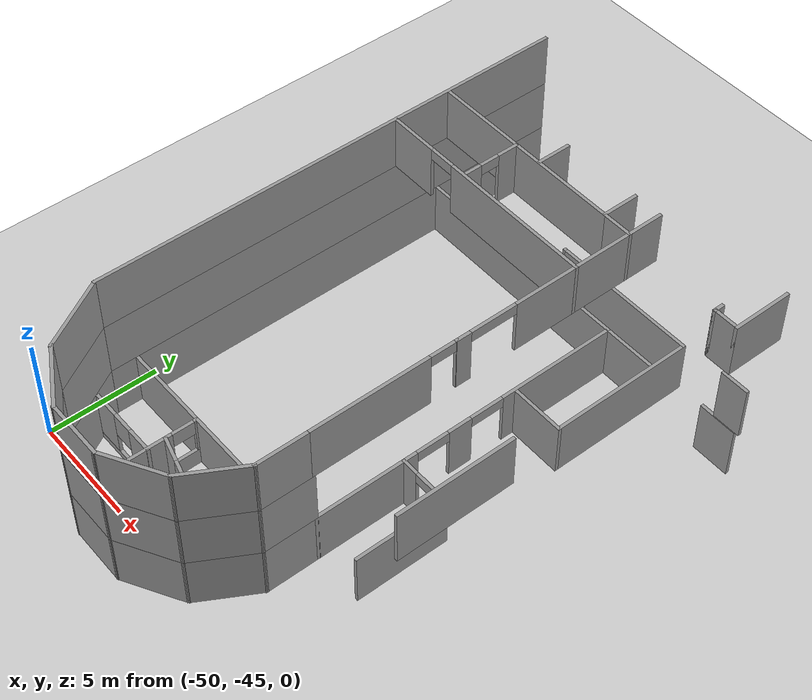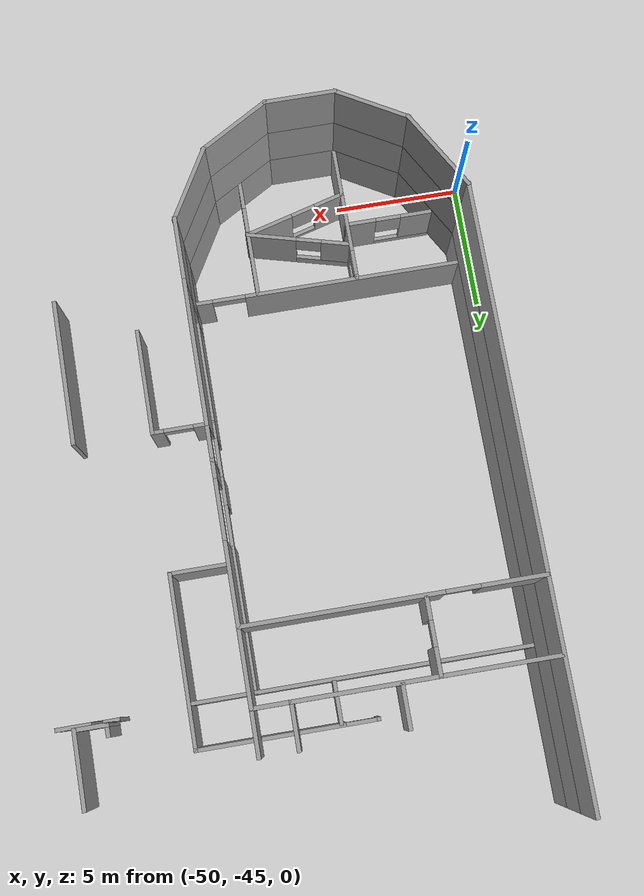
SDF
<sdf version="1.7">
 <world name="default">
  <model name="ground_plane">
   <static>1</static>
   <link name="link">
    <collision name="collision">
     <geometry><plane><normal>0 0 1</normal><size>100 100</size></plane></geometry>
     <surface><friction><ode><mu>100</mu><mu2>50</mu2></ode></friction></surface>
    </collision>
    <visual name="visual">
     <cast_shadows>0</cast_shadows>
     <geometry><plane><normal>0 0 1</normal><size>100 100</size></plane></geometry>
     <material>
      <script><uri>file://media/materials/scripts/gazebo.material</uri><name>Gazebo/Grey</name></script>
     </material>
    </visual>
   </link>
  </model>
  <model name="Anselm_Turmeda">
   <pose>-32.7988 -2.37459 0 0 -0 0</pose>
   <link name="Wall_14">
    <collision name="Wall_14_Collision">
     <geometry><box><size>22.5 0.15 2.5</size></box></geometry>
     <pose>0 0 1.25 0 -0 0</pose>
    </collision>
    <visual name="Wall_14_Visual">
     <pose>0 0 1.25 0 -0 0</pose>
     <geometry><box><size>22.5 0.15 2.5</size></box></geometry>
     <material>
      <script><uri>file://media/materials/scripts/gazebo.material</uri><name>Gazebo/Grey</name></script>
      <ambient>1 1 1 1</ambient>
     </material>
     <meta><layer>0</layer></meta>
    </visual>
    <pose>-16.4138 -28.8128 0 0 -0 -1.5708</pose>
   </link>
   <link name="Wall_145">
    <collision name="Wall_145_Collision">
     <geometry><box><size>1.75 0.15 2.5</size></box></geometry>
     <pose>0 0 1.25 0 -0 0</pose>
    </collision>
    <visual name="Wall_145_Visual">
     <pose>0 0 1.25 0 -0 0</pose>
     <geometry><box><size>1.75 0.15 2.5</size></box></geometry>
     <material>
      <script><uri>file://media/materials/scripts/gazebo.material</uri><name>Gazebo/Grey</name></script>
      <ambient>1 1 1 1</ambient>
     </material>
     <meta><layer>0</layer></meta>
    </visual>
    <pose>0.179073 -23.4174 0 0 -0 0</pose>
   </link>
   <link name="Wall_152">
    <collision name="Wall_152_Collision">
     <geometry><box><size>0.5 0.15 2.5</size></box></geometry>
     <pose>0 0 1.25 0 -0 0</pose>
    </collision>
    <visual name="Wall_152_Visual">
     <pose>0 0 1.25 0 -0 0</pose>
     <geometry><box><size>0.5 0.15 2.5</size></box></geometry>
     <material>
      <script><uri>file://media/materials/scripts/gazebo.material</uri><name>Gazebo/Grey</name></script>
      <ambient>1 1 1 1</ambient>
     </material>
     <meta><layer>2</layer></meta>
    </visual>
    <pose>-0.974545 -23.0854 5 0 -0 -1.5708</pose>
   </link>
   <link name="Wall_153">
    <collision name="Wall_153_Collision">
     <geometry><box><size>1.25 0.15 2.5</size></box></geometry>
     <pose>0 0 1.25 0 -0 0</pose>
    </collision>
    <visual name="Wall_153_Visual">
     <pose>0 0 1.25 0 -0 0</pose>
     <geometry><box><size>1.25 0.15 2.5</size></box></geometry>
     <material>
      <script><uri>file://media/materials/scripts/gazebo.material</uri><name>Gazebo/Grey</name></script>
      <ambient>1 1 1 1</ambient>
     </material>
     <meta><layer>2</layer></meta>
    </visual>
    <pose>-0.424545 -23.2604 5 0 -0 0</pose>
   </link>
   <link name="Wall_154">
    <collision name="Wall_154_Collision">
     <geometry><box><size>2.75 0.15 2.5</size></box></geometry>
     <pose>0 0 1.25 0 -0 0</pose>
    </collision>
    <visual name="Wall_154_Visual">
     <pose>0 0 1.25 0 -0 0</pose>
     <geometry><box><size>2.75 0.15 2.5</size></box></geometry>
     <material>
      <script><uri>file://media/materials/scripts/gazebo.material</uri><name>Gazebo/Grey</name></script>
      <ambient>1 1 1 1</ambient>
     </material>
     <meta><layer>2</layer></meta>
    </visual>
    <pose>0.125454 -21.9604 5 0 -0 1.5708</pose>
   </link>
   <link name="Wall_16">
    <collision name="Wall_16_Collision">
     <geometry><box><size>3.5 0.15 2.5</size></box></geometry>
     <pose>0 0 1.25 0 -0 0</pose>
    </collision>
    <visual name="Wall_16_Visual">
     <pose>0 0 1.25 0 -0 0</pose>
     <geometry><box><size>3.5 0.15 2.5</size></box></geometry>
     <material>
      <script><uri>file://media/materials/scripts/gazebo.material</uri><name>Gazebo/Grey</name></script>
      <ambient>1 1 1 1</ambient>
     </material>
     <meta><layer>0</layer></meta>
    </visual>
    <pose>-15.5763 -41.4384 0 0 -0 -1.0472</pose>
   </link>
   <link name="Wall_17">
    <collision name="Wall_17_Collision">
     <geometry><box><size>2.9879 0.15 2.5</size></box></geometry>
     <pose>0 0 1.25 0 -0 0</pose>
    </collision>
    <visual name="Wall_17_Visual">
     <pose>0 0 1.25 0 -0 0</pose>
     <geometry><box><size>2.9879 0.15 2.5</size></box></geometry>
     <material>
      <script><uri>file://media/materials/scripts/gazebo.material</uri><name>Gazebo/Grey</name></script>
      <ambient>1 1 1 1</ambient>
     </material>
     <meta><layer>0</layer></meta>
    </visual>
    <pose>-13.5117 -43.6015 0 0 -0 -0.526062</pose>
   </link>
   <link name="Wall_170">
    <collision name="Wall_170_Collision">
     <geometry><box><size>1.3 0.15 2.5</size></box></geometry>
     <pose>0 0 1.25 0 -0 0</pose>
    </collision>
    <visual name="Wall_170_Visual">
     <pose>0 0 1.25 0 -0 0</pose>
     <geometry><box><size>1.3 0.15 2.5</size></box></geometry>
     <material>
      <script><uri>file://media/materials/scripts/gazebo.material</uri><name>Gazebo/Grey</name></script>
      <ambient>1 1 1 1</ambient>
     </material>
     <meta><layer>1</layer></meta>
    </visual>
    <pose>0.597309 -23.3883 2.5 0 -0 0</pose>
   </link>
   <link name="Wall_18">
    <collision name="Wall_18_Collision">
     <geometry><box><size>2.76398 0.15 2.5</size></box></geometry>
     <pose>0 0 1.25 0 -0 0</pose>
    </collision>
    <visual name="Wall_18_Visual">
     <pose>0 0 1.25 0 -0 0</pose>
     <geometry><box><size>2.76398 0.15 2.5</size></box></geometry>
     <material>
      <script><uri>file://media/materials/scripts/gazebo.material</uri><name>Gazebo/Grey</name></script>
      <ambient>1 1 1 1</ambient>
     </material>
     <meta><layer>0</layer></meta>
    </visual>
    <pose>-10.9776 -44.314 0 0 -0 0</pose>
   </link>
   <link name="Wall_19">
    <collision name="Wall_19_Collision">
     <geometry><box><size>3 0.15 2.5</size></box></geometry>
     <pose>0 0 1.25 0 -0 0</pose>
    </collision>
    <visual name="Wall_19_Visual">
     <pose>0 0 1.25 0 -0 0</pose>
     <geometry><box><size>3 0.15 2.5</size></box></geometry>
     <material>
      <script><uri>file://media/materials/scripts/gazebo.material</uri><name>Gazebo/Grey</name></script>
      <ambient>1 1 1 1</ambient>
     </material>
     <meta><layer>0</layer></meta>
    </visual>
    <pose>-8.4365 -43.6015 0 0 -0 0.523599</pose>
   </link>
   <link name="Wall_20">
    <collision name="Wall_20_Collision">
     <geometry><box><size>3 0.15 2.5</size></box></geometry>
     <pose>0 0 1.25 0 -0 0</pose>
    </collision>
    <visual name="Wall_20_Visual">
     <pose>0 0 1.25 0 -0 0</pose>
     <geometry><box><size>3 0.15 2.5</size></box></geometry>
     <material>
      <script><uri>file://media/materials/scripts/gazebo.material</uri><name>Gazebo/Grey</name></script>
      <ambient>1 1 1 1</ambient>
     </material>
     <meta><layer>0</layer></meta>
    </visual>
    <pose>-6.48992 -41.6549 0 0 -0 1.0472</pose>
   </link>
   <link name="Wall_21">
    <collision name="Wall_21_Collision">
     <geometry><box><size>2.5 0.15 2.5</size></box></geometry>
     <pose>0 0 1.25 0 -0 0</pose>
    </collision>
    <visual name="Wall_21_Visual">
     <pose>0 0 1.25 0 -0 0</pose>
     <geometry><box><size>2.5 0.15 2.5</size></box></geometry>
     <material>
      <script><uri>file://media/materials/scripts/gazebo.material</uri><name>Gazebo/Grey</name></script>
      <ambient>1 1 1 1</ambient>
     </material>
     <meta><layer>0</layer></meta>
    </visual>
    <pose>-5.77742 -39.2458 0 0 -0 1.5708</pose>
   </link>
   <link name="Wall_269">
    <pose>-5.77742 -34.7708 5 0 -0 1.5708</pose>
    <visual name="Wall_269_Visual_0">
     <pose>-0.668463 0 1.25 0 -0 0</pose>
     <geometry><box><size>5.41307 0.15 2.5</size></box></geometry>
     <material>
      <script><uri>file://media/materials/scripts/gazebo.material</uri><name>Gazebo/Grey</name></script>
      <ambient>1 1 1 1</ambient>
     </material>
     <meta><layer>2</layer></meta>
    </visual>
    <collision name="Wall_269_Collision_0">
     <geometry><box><size>5.41307 0.15 2.5</size></box></geometry>
     <pose>-0.668463 0 1.25 0 -0 0</pose>
    </collision>
    <visual name="Wall_269_Visual_1">
     <pose>3.28669 0 1.25 0 -0 0</pose>
     <geometry><box><size>0.176623 0.15 2.5</size></box></geometry>
     <material>
      <script><uri>file://media/materials/scripts/gazebo.material</uri><name>Gazebo/Grey</name></script>
      <ambient>1 1 1 1</ambient>
     </material>
     <meta><layer>2</layer></meta>
    </visual>
    <collision name="Wall_269_Collision_1">
     <geometry><box><size>0.176623 0.15 2.5</size></box></geometry>
     <pose>3.28669 0 1.25 0 -0 0</pose>
    </collision>
    <visual name="Wall_269_Visual_2">
     <pose>2.61822 0 2.25 0 -0 0</pose>
     <geometry><box><size>1.1603 0.15 0.5</size></box></geometry>
     <material>
      <script><uri>file://media/materials/scripts/gazebo.material</uri><name>Gazebo/Grey</name></script>
      <ambient>1 1 1 1</ambient>
     </material>
     <meta><layer>2</layer></meta>
    </visual>
    <collision name="Wall_269_Collision_2">
     <geometry><box><size>1.1603 0.15 0.5</size></box></geometry>
     <pose>2.61822 0 2.25 0 -0 0</pose>
    </collision>
   </link>
   <link name="Wall_274">
    <collision name="Wall_274_Collision">
     <geometry><box><size>5.25 0.15 2.5</size></box></geometry>
     <pose>0 0 1.25 0 -0 0</pose>
    </collision>
    <visual name="Wall_274_Visual">
     <pose>0 0 1.25 0 -0 0</pose>
     <geometry><box><size>5.25 0.15 2.5</size></box></geometry>
     <material>
      <script><uri>file://media/materials/scripts/gazebo.material</uri><name>Gazebo/Grey</name></script>
      <ambient>1 1 1 1</ambient>
     </material>
     <meta><layer>2</layer></meta>
    </visual>
    <pose>-1.12488 -35.4467 5 0 -0 -1.5708</pose>
   </link>
   <link name="Wall_279">
    <pose>-5.77742 -26.4208 5 0 -0 1.5708</pose>
    <visual name="Wall_279_Visual_0">
     <pose>-4.77557 0 1.25 0 -0 0</pose>
     <geometry><box><size>0.698867 0.15 2.5</size></box></geometry>
     <material>
      <script><uri>file://media/materials/scripts/gazebo.material</uri><name>Gazebo/Grey</name></script>
      <ambient>1 1 1 1</ambient>
     </material>
     <meta><layer>2</layer></meta>
    </visual>
    <collision name="Wall_279_Collision_0">
     <geometry><box><size>0.698867 0.15 2.5</size></box></geometry>
     <pose>-4.77557 0 1.25 0 -0 0</pose>
    </collision>
    <visual name="Wall_279_Visual_1">
     <pose>1.43519 0 1.25 0 -0 0</pose>
     <geometry><box><size>7.37962 0.15 2.5</size></box></geometry>
     <material>
      <script><uri>file://media/materials/scripts/gazebo.material</uri><name>Gazebo/Grey</name></script>
      <ambient>1 1 1 1</ambient>
     </material>
     <meta><layer>2</layer></meta>
    </visual>
    <collision name="Wall_279_Collision_1">
     <geometry><box><size>7.37962 0.15 2.5</size></box></geometry>
     <pose>1.43519 0 1.25 0 -0 0</pose>
    </collision>
    <visual name="Wall_279_Visual_2">
     <pose>-3.34038 0 2.25 0 -0 0</pose>
     <geometry><box><size>2.17151 0.15 0.5</size></box></geometry>
     <material>
      <script><uri>file://media/materials/scripts/gazebo.material</uri><name>Gazebo/Grey</name></script>
      <ambient>1 1 1 1</ambient>
     </material>
     <meta><layer>2</layer></meta>
    </visual>
    <collision name="Wall_279_Collision_2">
     <geometry><box><size>2.17151 0.15 0.5</size></box></geometry>
     <pose>-3.34038 0 2.25 0 -0 0</pose>
    </collision>
   </link>
   <link name="Wall_281">
    <collision name="Wall_281_Collision">
     <geometry><box><size>1.75 0.15 2.5</size></box></geometry>
     <pose>0 0 1.25 0 -0 0</pose>
    </collision>
    <visual name="Wall_281_Visual">
     <pose>0 0 1.25 0 -0 0</pose>
     <geometry><box><size>1.75 0.15 2.5</size></box></geometry>
     <material>
      <script><uri>file://media/materials/scripts/gazebo.material</uri><name>Gazebo/Grey</name></script>
      <ambient>1 1 1 1</ambient>
     </material>
     <meta><layer>2</layer></meta>
    </visual>
    <pose>-7.12742 -22.1708 5 0 -0 -1.5708</pose>
   </link>
   <link name="Wall_282">
    <collision name="Wall_282_Collision">
     <geometry><box><size>9.35 0.15 2.5</size></box></geometry>
     <pose>0 0 1.25 0 -0 0</pose>
    </collision>
    <visual name="Wall_282_Visual">
     <pose>0 0 1.25 0 -0 0</pose>
     <geometry><box><size>9.35 0.15 2.5</size></box></geometry>
     <material>
      <script><uri>file://media/materials/scripts/gazebo.material</uri><name>Gazebo/Grey</name></script>
      <ambient>1 1 1 1</ambient>
     </material>
     <meta><layer>2</layer></meta>
    </visual>
    <pose>-11.7274 -22.9708 5 0 -0 3.14159</pose>
   </link>
   <link name="Wall_284">
    <collision name="Wall_284_Collision">
     <geometry><box><size>1.5 0.15 2.5</size></box></geometry>
     <pose>0 0 1.25 0 -0 0</pose>
    </collision>
    <visual name="Wall_284_Visual">
     <pose>0 0 1.25 0 -0 0</pose>
     <geometry><box><size>1.5 0.15 2.5</size></box></geometry>
     <material>
      <script><uri>file://media/materials/scripts/gazebo.material</uri><name>Gazebo/Grey</name></script>
      <ambient>1 1 1 1</ambient>
     </material>
     <meta><layer>2</layer></meta>
    </visual>
    <pose>-6.45242 -22.9708 5 0 -0 0</pose>
   </link>
   <link name="Wall_286">
    <pose>-11.0749 -25.7096 5 0 -0 0</pose>
    <visual name="Wall_286_Visual_0">
     <pose>-4.19923 0 1.25 0 -0 0</pose>
     <geometry><box><size>2.35155 0.15 2.5</size></box></geometry>
     <material>
      <script><uri>file://media/materials/scripts/gazebo.material</uri><name>Gazebo/Grey</name></script>
      <ambient>1 1 1 1</ambient>
     </material>
     <meta><layer>2</layer></meta>
    </visual>
    <collision name="Wall_286_Collision_0">
     <geometry><box><size>2.35155 0.15 2.5</size></box></geometry>
     <pose>-4.19923 0 1.25 0 -0 0</pose>
    </collision>
    <visual name="Wall_286_Visual_1">
     <pose>1.78614 0 1.25 0 -0 0</pose>
     <geometry><box><size>7.17772 0.15 2.5</size></box></geometry>
     <material>
      <script><uri>file://media/materials/scripts/gazebo.material</uri><name>Gazebo/Grey</name></script>
      <ambient>1 1 1 1</ambient>
     </material>
     <meta><layer>2</layer></meta>
    </visual>
    <collision name="Wall_286_Collision_1">
     <geometry><box><size>7.17772 0.15 2.5</size></box></geometry>
     <pose>1.78614 0 1.25 0 -0 0</pose>
    </collision>
    <visual name="Wall_286_Visual_2">
     <pose>-2.41309 0 2.25 0 -0 0</pose>
     <geometry><box><size>1.22073 0.15 0.5</size></box></geometry>
     <material>
      <script><uri>file://media/materials/scripts/gazebo.material</uri><name>Gazebo/Grey</name></script>
      <ambient>1 1 1 1</ambient>
     </material>
     <meta><layer>2</layer></meta>
    </visual>
    <collision name="Wall_286_Collision_2">
     <geometry><box><size>1.22073 0.15 0.5</size></box></geometry>
     <pose>-2.41309 0 2.25 0 -0 0</pose>
    </collision>
   </link>
   <link name="Wall_315">
    <collision name="Wall_315_Collision">
     <geometry><box><size>1.6 0.15 2.5</size></box></geometry>
     <pose>0 0 1.25 0 -0 0</pose>
    </collision>
    <visual name="Wall_315_Visual">
     <pose>0 0 1.25 0 -0 0</pose>
     <geometry><box><size>1.6 0.15 2.5</size></box></geometry>
     <material>
      <script><uri>file://media/materials/scripts/gazebo.material</uri><name>Gazebo/Grey</name></script>
      <ambient>1 1 1 1</ambient>
     </material>
     <meta><layer>2</layer></meta>
    </visual>
    <pose>-10.8862 -22.1772 5 0 -0 -1.5708</pose>
   </link>
   <link name="Wall_388">
    <pose>-12.2051 -24.3084 5 0 -0 -1.5708</pose>
    <visual name="Wall_388_Visual_0">
     <pose>-0.867583 0 1.25 0 -0 0</pose>
     <geometry><box><size>1.01483 0.15 2.5</size></box></geometry>
     <material>
      <script><uri>file://media/materials/scripts/gazebo.material</uri><name>Gazebo/Grey</name></script>
      <ambient>1 1 1 1</ambient>
     </material>
     <meta><layer>2</layer></meta>
    </visual>
    <collision name="Wall_388_Collision_0">
     <geometry><box><size>1.01483 0.15 2.5</size></box></geometry>
     <pose>-0.867583 0 1.25 0 -0 0</pose>
    </collision>
    <visual name="Wall_388_Visual_1">
     <pose>0.957417 0 1.25 0 -0 0</pose>
     <geometry><box><size>0.835166 0.15 2.5</size></box></geometry>
     <material>
      <script><uri>file://media/materials/scripts/gazebo.material</uri><name>Gazebo/Grey</name></script>
      <ambient>1 1 1 1</ambient>
     </material>
     <meta><layer>2</layer></meta>
    </visual>
    <collision name="Wall_388_Collision_1">
     <geometry><box><size>0.835166 0.15 2.5</size></box></geometry>
     <pose>0.957417 0 1.25 0 -0 0</pose>
    </collision>
    <visual name="Wall_388_Visual_2">
     <pose>0.089834 0 2.25 0 -0 0</pose>
     <geometry><box><size>0.9 0.15 0.5</size></box></geometry>
     <material>
      <script><uri>file://media/materials/scripts/gazebo.material</uri><name>Gazebo/Grey</name></script>
      <ambient>1 1 1 1</ambient>
     </material>
     <meta><layer>2</layer></meta>
    </visual>
    <collision name="Wall_388_Collision_2">
     <geometry><box><size>0.9 0.15 0.5</size></box></geometry>
     <pose>0.089834 0 2.25 0 -0 0</pose>
    </collision>
   </link>
   <link name="Wall_39">
    <collision name="Wall_39_Collision">
     <geometry><box><size>22.5 0.15 2.5</size></box></geometry>
     <pose>0 0 1.25 0 -0 0</pose>
    </collision>
    <visual name="Wall_39_Visual">
     <pose>0 0 1.25 0 -0 0</pose>
     <geometry><box><size>22.5 0.15 2.5</size></box></geometry>
     <material>
      <script><uri>file://media/materials/scripts/gazebo.material</uri><name>Gazebo/Grey</name></script>
      <ambient>1 1 1 1</ambient>
     </material>
     <meta><layer>1</layer></meta>
    </visual>
    <pose>-16.4138 -28.8128 2.5 0 -0 -1.5708</pose>
   </link>
   <link name="Wall_40">
    <collision name="Wall_40_Collision">
     <geometry><box><size>3.5 0.15 2.5</size></box></geometry>
     <pose>0 0 1.25 0 -0 0</pose>
    </collision>
    <visual name="Wall_40_Visual">
     <pose>0 0 1.25 0 -0 0</pose>
     <geometry><box><size>3.5 0.15 2.5</size></box></geometry>
     <material>
      <script><uri>file://media/materials/scripts/gazebo.material</uri><name>Gazebo/Grey</name></script>
      <ambient>1 1 1 1</ambient>
     </material>
     <meta><layer>1</layer></meta>
    </visual>
    <pose>-15.5763 -41.4384 2.5 0 -0 -1.0472</pose>
   </link>
   <link name="Wall_41">
    <collision name="Wall_41_Collision">
     <geometry><box><size>3 0.15 2.5</size></box></geometry>
     <pose>0 0 1.25 0 -0 0</pose>
    </collision>
    <visual name="Wall_41_Visual">
     <pose>0 0 1.25 0 -0 0</pose>
     <geometry><box><size>3 0.15 2.5</size></box></geometry>
     <material>
      <script><uri>file://media/materials/scripts/gazebo.material</uri><name>Gazebo/Grey</name></script>
      <ambient>1 1 1 1</ambient>
     </material>
     <meta><layer>1</layer></meta>
    </visual>
    <pose>-13.5047 -43.6015 2.5 0 -0 -0.523599</pose>
   </link>
   <link name="Wall_42">
    <collision name="Wall_42_Collision">
     <geometry><box><size>2.75 0.15 2.5</size></box></geometry>
     <pose>0 0 1.25 0 -0 0</pose>
    </collision>
    <visual name="Wall_42_Visual">
     <pose>0 0 1.25 0 -0 0</pose>
     <geometry><box><size>2.75 0.15 2.5</size></box></geometry>
     <material>
      <script><uri>file://media/materials/scripts/gazebo.material</uri><name>Gazebo/Grey</name></script>
      <ambient>1 1 1 1</ambient>
     </material>
     <meta><layer>1</layer></meta>
    </visual>
    <pose>-10.9706 -44.314 2.5 0 -0 0</pose>
   </link>
   <link name="Wall_43">
    <collision name="Wall_43_Collision">
     <geometry><box><size>3 0.15 2.5</size></box></geometry>
     <pose>0 0 1.25 0 -0 0</pose>
    </collision>
    <visual name="Wall_43_Visual">
     <pose>0 0 1.25 0 -0 0</pose>
     <geometry><box><size>3 0.15 2.5</size></box></geometry>
     <material>
      <script><uri>file://media/materials/scripts/gazebo.material</uri><name>Gazebo/Grey</name></script>
      <ambient>1 1 1 1</ambient>
     </material>
     <meta><layer>1</layer></meta>
    </visual>
    <pose>-8.4365 -43.6015 2.5 0 -0 0.523599</pose>
   </link>
   <link name="Wall_44">
    <collision name="Wall_44_Collision">
     <geometry><box><size>3 0.15 2.5</size></box></geometry>
     <pose>0 0 1.25 0 -0 0</pose>
    </collision>
    <visual name="Wall_44_Visual">
     <pose>0 0 1.25 0 -0 0</pose>
     <geometry><box><size>3 0.15 2.5</size></box></geometry>
     <material>
      <script><uri>file://media/materials/scripts/gazebo.material</uri><name>Gazebo/Grey</name></script>
      <ambient>1 1 1 1</ambient>
     </material>
     <meta><layer>1</layer></meta>
    </visual>
    <pose>-6.48992 -41.6549 2.5 0 -0 1.0472</pose>
   </link>
   <link name="Wall_45">
    <collision name="Wall_45_Collision">
     <geometry><box><size>2.5 0.15 2.5</size></box></geometry>
     <pose>0 0 1.25 0 -0 0</pose>
    </collision>
    <visual name="Wall_45_Visual">
     <pose>0 0 1.25 0 -0 0</pose>
     <geometry><box><size>2.5 0.15 2.5</size></box></geometry>
     <material>
      <script><uri>file://media/materials/scripts/gazebo.material</uri><name>Gazebo/Grey</name></script>
      <ambient>1 1 1 1</ambient>
     </material>
     <meta><layer>1</layer></meta>
    </visual>
    <pose>-5.77742 -39.2458 2.5 0 -0 1.5708</pose>
   </link>
   <link name="Wall_455">
    <collision name="Wall_455_Collision">
     <geometry><box><size>10.75 0.15 2.5</size></box></geometry>
     <pose>0 0 1.25 0 -0 0</pose>
    </collision>
    <visual name="Wall_455_Visual">
     <pose>0 0 1.25 0 -0 0</pose>
     <geometry><box><size>10.75 0.15 2.5</size></box></geometry>
     <material>
      <script><uri>file://media/materials/scripts/gazebo.material</uri><name>Gazebo/Grey</name></script>
      <ambient>1 1 1 1</ambient>
     </material>
     <meta><layer>0</layer></meta>
    </visual>
    <pose>-11.0797 -23.5386 0 0 -0 0</pose>
   </link>
   <link name="Wall_456">
    <pose>-5.77855 -30.8047 0 0 -0 -1.57064</pose>
    <visual name="Wall_456_Visual_0">
     <pose>-4.52981 0 1.25 0 -0 0</pose>
     <geometry><box><size>5.6226 0.15 2.5</size></box></geometry>
     <material>
      <script><uri>file://media/materials/scripts/gazebo.material</uri><name>Gazebo/Grey</name></script>
      <ambient>1 1 1 1</ambient>
     </material>
     <meta><layer>0</layer></meta>
    </visual>
    <collision name="Wall_456_Collision_0">
     <geometry><box><size>5.6226 0.15 2.5</size></box></geometry>
     <pose>-4.52981 0 1.25 0 -0 0</pose>
    </collision>
    <visual name="Wall_456_Visual_1">
     <pose>0.423156 0 1.25 0 -0 0</pose>
     <geometry><box><size>1.11519 0.15 2.5</size></box></geometry>
     <material>
      <script><uri>file://media/materials/scripts/gazebo.material</uri><name>Gazebo/Grey</name></script>
      <ambient>1 1 1 1</ambient>
     </material>
     <meta><layer>0</layer></meta>
    </visual>
    <collision name="Wall_456_Collision_1">
     <geometry><box><size>1.11519 0.15 2.5</size></box></geometry>
     <pose>0.423156 0 1.25 0 -0 0</pose>
    </collision>
    <visual name="Wall_456_Visual_2">
     <pose>4.92523 0 1.25 0 -0 0</pose>
     <geometry><box><size>4.83175 0.15 2.5</size></box></geometry>
     <material>
      <script><uri>file://media/materials/scripts/gazebo.material</uri><name>Gazebo/Grey</name></script>
      <ambient>1 1 1 1</ambient>
     </material>
     <meta><layer>0</layer></meta>
    </visual>
    <collision name="Wall_456_Collision_2">
     <geometry><box><size>4.83175 0.15 2.5</size></box></geometry>
     <pose>4.92523 0 1.25 0 -0 0</pose>
    </collision>
    <visual name="Wall_456_Visual_3">
     <pose>-0.926474 0 2.25 0 -0 0</pose>
     <geometry><box><size>1.58407 0.15 0.5</size></box></geometry>
     <material>
      <script><uri>file://media/materials/scripts/gazebo.material</uri><name>Gazebo/Grey</name></script>
      <ambient>1 1 1 1</ambient>
     </material>
     <meta><layer>0</layer></meta>
    </visual>
    <collision name="Wall_456_Collision_3">
     <geometry><box><size>1.58407 0.15 0.5</size></box></geometry>
     <pose>-0.926474 0 2.25 0 -0 0</pose>
    </collision>
    <visual name="Wall_456_Visual_4">
     <pose>1.74505 0 2.25 0 -0 0</pose>
     <geometry><box><size>1.52861 0.15 0.5</size></box></geometry>
     <material>
      <script><uri>file://media/materials/scripts/gazebo.material</uri><name>Gazebo/Grey</name></script>
      <ambient>1 1 1 1</ambient>
     </material>
     <meta><layer>0</layer></meta>
    </visual>
    <collision name="Wall_456_Collision_4">
     <geometry><box><size>1.52861 0.15 0.5</size></box></geometry>
     <pose>1.74505 0 2.25 0 -0 0</pose>
    </collision>
   </link>
   <link name="Wall_461">
    <pose>-6.7053 -21.8339 0 0 -0 0</pose>
    <visual name="Wall_461_Visual_0">
     <pose>-3.4311 0 1.25 0 -0 0</pose>
     <geometry><box><size>0.137804 0.15 2.5</size></box></geometry>
     <material>
      <script><uri>file://media/materials/scripts/gazebo.material</uri><name>Gazebo/Grey</name></script>
      <ambient>1 1 1 1</ambient>
     </material>
     <meta><layer>0</layer></meta>
    </visual>
    <collision name="Wall_461_Collision_0">
     <geometry><box><size>0.137804 0.15 2.5</size></box></geometry>
     <pose>-3.4311 0 1.25 0 -0 0</pose>
    </collision>
    <visual name="Wall_461_Visual_1">
     <pose>0.648319 0 1.25 0 -0 0</pose>
     <geometry><box><size>5.70336 0.15 2.5</size></box></geometry>
     <material>
      <script><uri>file://media/materials/scripts/gazebo.material</uri><name>Gazebo/Grey</name></script>
      <ambient>1 1 1 1</ambient>
     </material>
     <meta><layer>0</layer></meta>
    </visual>
    <collision name="Wall_461_Collision_1">
     <geometry><box><size>5.70336 0.15 2.5</size></box></geometry>
     <pose>0.648319 0 1.25 0 -0 0</pose>
    </collision>
    <visual name="Wall_461_Visual_2">
     <pose>-2.78278 0 2.25 0 -0 0</pose>
     <geometry><box><size>1.15883 0.15 0.5</size></box></geometry>
     <material>
      <script><uri>file://media/materials/scripts/gazebo.material</uri><name>Gazebo/Grey</name></script>
      <ambient>1 1 1 1</ambient>
     </material>
     <meta><layer>0</layer></meta>
    </visual>
    <collision name="Wall_461_Collision_2">
     <geometry><box><size>1.15883 0.15 0.5</size></box></geometry>
     <pose>-2.78278 0 2.25 0 -0 0</pose>
    </collision>
   </link>
   <link name="Wall_463">
    <collision name="Wall_463_Collision">
     <geometry><box><size>6.75 0.15 2.5</size></box></geometry>
     <pose>0 0 1.25 0 -0 0</pose>
    </collision>
    <visual name="Wall_463_Visual">
     <pose>0 0 1.25 0 -0 0</pose>
     <geometry><box><size>6.75 0.15 2.5</size></box></geometry>
     <material>
      <script><uri>file://media/materials/scripts/gazebo.material</uri><name>Gazebo/Grey</name></script>
      <ambient>1 1 1 1</ambient>
     </material>
     <meta><layer>0</layer></meta>
    </visual>
    <pose>-3.2803 -25.1339 0 0 -0 -1.5708</pose>
   </link>
   <link name="Wall_464">
    <collision name="Wall_464_Collision">
     <geometry><box><size>2.5 0.15 2.5</size></box></geometry>
     <pose>0 0 1.25 0 -0 0</pose>
    </collision>
    <visual name="Wall_464_Visual">
     <pose>0 0 1.25 0 -0 0</pose>
     <geometry><box><size>2.5 0.15 2.5</size></box></geometry>
     <material>
      <script><uri>file://media/materials/scripts/gazebo.material</uri><name>Gazebo/Grey</name></script>
      <ambient>1 1 1 1</ambient>
     </material>
     <meta><layer>0</layer></meta>
    </visual>
    <pose>-4.4553 -28.4339 0 0 -0 3.14159</pose>
   </link>
   <link name="Wall_466">
    <collision name="Wall_466_Collision">
     <geometry><box><size>1.75 0.15 2.5</size></box></geometry>
     <pose>0 0 1.25 0 -0 0</pose>
    </collision>
    <visual name="Wall_466_Visual">
     <pose>0 0 1.25 0 -0 0</pose>
     <geometry><box><size>1.75 0.15 2.5</size></box></geometry>
     <material>
      <script><uri>file://media/materials/scripts/gazebo.material</uri><name>Gazebo/Grey</name></script>
      <ambient>1 1 1 1</ambient>
     </material>
     <meta><layer>0</layer></meta>
    </visual>
    <pose>-8.74113 -22.7062 0 0 -0 -1.5708</pose>
   </link>
   <link name="Wall_468">
    <collision name="Wall_468_Collision">
     <geometry><box><size>2.5 0.15 2.5</size></box></geometry>
     <pose>0 0 1.25 0 -0 0</pose>
    </collision>
    <visual name="Wall_468_Visual">
     <pose>0 0 1.25 0 -0 0</pose>
     <geometry><box><size>2.5 0.15 2.5</size></box></geometry>
     <material>
      <script><uri>file://media/materials/scripts/gazebo.material</uri><name>Gazebo/Grey</name></script>
      <ambient>1 1 1 1</ambient>
     </material>
     <meta><layer>0</layer></meta>
    </visual>
    <pose>-4.60469 -23.5386 0 0 -0 0</pose>
   </link>
   <link name="Wall_472">
    <pose>-4.58074 -33.9326 0 0 -0 0</pose>
    <visual name="Wall_472_Visual_0">
     <pose>-0.837899 0 1.25 0 -0 0</pose>
     <geometry><box><size>0.824201 0.15 2.5</size></box></geometry>
     <material>
      <script><uri>file://media/materials/scripts/gazebo.material</uri><name>Gazebo/Grey</name></script>
      <ambient>1 1 1 1</ambient>
     </material>
     <meta><layer>0</layer></meta>
    </visual>
    <collision name="Wall_472_Collision_0">
     <geometry><box><size>0.824201 0.15 2.5</size></box></geometry>
     <pose>-0.837899 0 1.25 0 -0 0</pose>
    </collision>
    <visual name="Wall_472_Visual_1">
     <pose>0.991517 0 1.25 0 -0 0</pose>
     <geometry><box><size>0.516965 0.15 2.5</size></box></geometry>
     <material>
      <script><uri>file://media/materials/scripts/gazebo.material</uri><name>Gazebo/Grey</name></script>
      <ambient>1 1 1 1</ambient>
     </material>
     <meta><layer>0</layer></meta>
    </visual>
    <collision name="Wall_472_Collision_1">
     <geometry><box><size>0.516965 0.15 2.5</size></box></geometry>
     <pose>0.991517 0 1.25 0 -0 0</pose>
    </collision>
    <visual name="Wall_472_Visual_2">
     <pose>0.153618 0 2.25 0 -0 0</pose>
     <geometry><box><size>1.15883 0.15 0.5</size></box></geometry>
     <material>
      <script><uri>file://media/materials/scripts/gazebo.material</uri><name>Gazebo/Grey</name></script>
      <ambient>1 1 1 1</ambient>
     </material>
     <meta><layer>0</layer></meta>
    </visual>
    <collision name="Wall_472_Collision_2">
     <geometry><box><size>1.15883 0.15 0.5</size></box></geometry>
     <pose>0.153618 0 2.25 0 -0 0</pose>
    </collision>
   </link>
   <link name="Wall_473">
    <collision name="Wall_473_Collision">
     <geometry><box><size>4.25 0.15 2.5</size></box></geometry>
     <pose>0 0 1.25 0 -0 0</pose>
    </collision>
    <visual name="Wall_473_Visual">
     <pose>0 0 1.25 0 -0 0</pose>
     <geometry><box><size>4.25 0.15 2.5</size></box></geometry>
     <material>
      <script><uri>file://media/materials/scripts/gazebo.material</uri><name>Gazebo/Grey</name></script>
      <ambient>1 1 1 1</ambient>
     </material>
     <meta><layer>0</layer></meta>
    </visual>
    <pose>-3.40574 -35.9827 0 0 -0 -1.5708</pose>
   </link>
   <link name="Wall_475">
    <pose>-11.0843 -38.7667 0 0 -0 0</pose>
    <visual name="Wall_475_Visual_0">
     <pose>-1.04891 0 1.25 0 -0 0</pose>
     <geometry><box><size>8.65218 0.15 2.5</size></box></geometry>
     <material>
      <script><uri>file://media/materials/scripts/gazebo.material</uri><name>Gazebo/Grey</name></script>
      <ambient>1 1 1 1</ambient>
     </material>
     <meta><layer>0</layer></meta>
    </visual>
    <collision name="Wall_475_Collision_0">
     <geometry><box><size>8.65218 0.15 2.5</size></box></geometry>
     <pose>-1.04891 0 1.25 0 -0 0</pose>
    </collision>
    <visual name="Wall_475_Visual_1">
     <pose>4.97807 0 1.25 0 -0 0</pose>
     <geometry><box><size>0.793856 0.15 2.5</size></box></geometry>
     <material>
      <script><uri>file://media/materials/scripts/gazebo.material</uri><name>Gazebo/Grey</name></script>
      <ambient>1 1 1 1</ambient>
     </material>
     <meta><layer>0</layer></meta>
    </visual>
    <collision name="Wall_475_Collision_1">
     <geometry><box><size>0.793856 0.15 2.5</size></box></geometry>
     <pose>4.97807 0 1.25 0 -0 0</pose>
    </collision>
    <visual name="Wall_475_Visual_2">
     <pose>3.92916 0 2.25 0 -0 0</pose>
     <geometry><box><size>1.30397 0.15 0.5</size></box></geometry>
     <material>
      <script><uri>file://media/materials/scripts/gazebo.material</uri><name>Gazebo/Grey</name></script>
      <ambient>1 1 1 1</ambient>
     </material>
     <meta><layer>0</layer></meta>
    </visual>
    <collision name="Wall_475_Collision_2">
     <geometry><box><size>1.30397 0.15 0.5</size></box></geometry>
     <pose>3.92916 0 2.25 0 -0 0</pose>
    </collision>
   </link>
   <link name="Wall_477">
    <pose>-8.32455 -41.1108 0 0 -0 -1.5708</pose>
    <visual name="Wall_477_Visual_0">
     <pose>-1.04889 0 1.25 0 -0 0</pose>
     <geometry><box><size>2.65222 0.15 2.5</size></box></geometry>
     <material>
      <script><uri>file://media/materials/scripts/gazebo.material</uri><name>Gazebo/Grey</name></script>
      <ambient>1 1 1 1</ambient>
     </material>
     <meta><layer>0</layer></meta>
    </visual>
    <collision name="Wall_477_Collision_0">
     <geometry><box><size>2.65222 0.15 2.5</size></box></geometry>
     <pose>-1.04889 0 1.25 0 -0 0</pose>
    </collision>
    <visual name="Wall_477_Visual_1">
     <pose>1.32611 0 0.6 0 -0 0</pose>
     <geometry><box><size>2.09778 0.15 1.2</size></box></geometry>
     <material>
      <script><uri>file://media/materials/scripts/gazebo.material</uri><name>Gazebo/Grey</name></script>
      <ambient>1 1 1 1</ambient>
     </material>
     <meta><layer>0</layer></meta>
    </visual>
    <collision name="Wall_477_Collision_1">
     <geometry><box><size>2.09778 0.15 1.2</size></box></geometry>
     <pose>1.32611 0 0.6 0 -0 0</pose>
    </collision>
    <visual name="Wall_477_Visual_2">
     <pose>1.82611 0 1.85 0 -0 0</pose>
     <geometry><box><size>1.09778 0.15 1.3</size></box></geometry>
     <material>
      <script><uri>file://media/materials/scripts/gazebo.material</uri><name>Gazebo/Grey</name></script>
      <ambient>1 1 1 1</ambient>
     </material>
     <meta><layer>0</layer></meta>
    </visual>
    <collision name="Wall_477_Collision_2">
     <geometry><box><size>1.09778 0.15 1.3</size></box></geometry>
     <pose>1.82611 0 1.85 0 -0 0</pose>
    </collision>
    <visual name="Wall_477_Visual_3">
     <pose>0.777218 0 2.35 0 -0 0</pose>
     <geometry><box><size>1 0.15 0.3</size></box></geometry>
     <material>
      <script><uri>file://media/materials/scripts/gazebo.material</uri><name>Gazebo/Grey</name></script>
      <ambient>1 1 1 1</ambient>
     </material>
     <meta><layer>0</layer></meta>
    </visual>
    <collision name="Wall_477_Collision_3">
     <geometry><box><size>1 0.15 0.3</size></box></geometry>
     <pose>0.777218 0 2.35 0 -0 0</pose>
    </collision>
   </link>
   <link name="Wall_479">
    <pose>-12.2846 -41.564 0 0 -0 1.5708</pose>
    <visual name="Wall_479_Visual_0">
     <pose>-0.594623 0 1.25 0 -0 0</pose>
     <geometry><box><size>4.46075 0.15 2.5</size></box></geometry>
     <material>
      <script><uri>file://media/materials/scripts/gazebo.material</uri><name>Gazebo/Grey</name></script>
      <ambient>1 1 1 1</ambient>
     </material>
     <meta><layer>0</layer></meta>
    </visual>
    <collision name="Wall_479_Collision_0">
     <geometry><box><size>4.46075 0.15 2.5</size></box></geometry>
     <pose>-0.594623 0 1.25 0 -0 0</pose>
    </collision>
    <visual name="Wall_479_Visual_1">
     <pose>2.23038 0 0.4 0 -0 0</pose>
     <geometry><box><size>1.18925 0.15 0.8</size></box></geometry>
     <material>
      <script><uri>file://media/materials/scripts/gazebo.material</uri><name>Gazebo/Grey</name></script>
      <ambient>1 1 1 1</ambient>
     </material>
     <meta><layer>0</layer></meta>
    </visual>
    <collision name="Wall_479_Collision_1">
     <geometry><box><size>1.18925 0.15 0.8</size></box></geometry>
     <pose>2.23038 0 0.4 0 -0 0</pose>
    </collision>
    <visual name="Wall_479_Visual_2">
     <pose>2.73038 0 1.65 0 -0 0</pose>
     <geometry><box><size>0.189246 0.15 1.7</size></box></geometry>
     <material>
      <script><uri>file://media/materials/scripts/gazebo.material</uri><name>Gazebo/Grey</name></script>
      <ambient>1 1 1 1</ambient>
     </material>
     <meta><layer>0</layer></meta>
    </visual>
    <collision name="Wall_479_Collision_2">
     <geometry><box><size>0.189246 0.15 1.7</size></box></geometry>
     <pose>2.73038 0 1.65 0 -0 0</pose>
    </collision>
    <visual name="Wall_479_Visual_3">
     <pose>2.13575 0 2.15 0 -0 0</pose>
     <geometry><box><size>1 0.15 0.7</size></box></geometry>
     <material>
      <script><uri>file://media/materials/scripts/gazebo.material</uri><name>Gazebo/Grey</name></script>
      <ambient>1 1 1 1</ambient>
     </material>
     <meta><layer>0</layer></meta>
    </visual>
    <collision name="Wall_479_Collision_3">
     <geometry><box><size>1 0.15 0.7</size></box></geometry>
     <pose>2.13575 0 2.15 0 -0 0</pose>
    </collision>
   </link>
   <link name="Wall_481">
    <pose>-13.9411 -41.0366 0 0 -0 3.14159</pose>
    <visual name="Wall_481_Visual_0">
     <pose>-1.12559 0 1.25 0 -0 0</pose>
     <geometry><box><size>1.24883 0.15 2.5</size></box></geometry>
     <material>
      <script><uri>file://media/materials/scripts/gazebo.material</uri><name>Gazebo/Grey</name></script>
      <ambient>1 1 1 1</ambient>
     </material>
     <meta><layer>0</layer></meta>
    </visual>
    <collision name="Wall_481_Collision_0">
     <geometry><box><size>1.24883 0.15 2.5</size></box></geometry>
     <pose>-1.12559 0 1.25 0 -0 0</pose>
    </collision>
    <visual name="Wall_481_Visual_1">
     <pose>0.624414 0 0.15 0 -0 0</pose>
     <geometry><box><size>2.25117 0.15 0.3</size></box></geometry>
     <material>
      <script><uri>file://media/materials/scripts/gazebo.material</uri><name>Gazebo/Grey</name></script>
      <ambient>1 1 1 1</ambient>
     </material>
     <meta><layer>0</layer></meta>
    </visual>
    <collision name="Wall_481_Collision_1">
     <geometry><box><size>2.25117 0.15 0.3</size></box></geometry>
     <pose>0.624414 0 0.15 0 -0 0</pose>
    </collision>
    <visual name="Wall_481_Visual_2">
     <pose>1.12441 0 1.4 0 -0 0</pose>
     <geometry><box><size>1.25117 0.15 2.2</size></box></geometry>
     <material>
      <script><uri>file://media/materials/scripts/gazebo.material</uri><name>Gazebo/Grey</name></script>
      <ambient>1 1 1 1</ambient>
     </material>
     <meta><layer>0</layer></meta>
    </visual>
    <collision name="Wall_481_Collision_2">
     <geometry><box><size>1.25117 0.15 2.2</size></box></geometry>
     <pose>1.12441 0 1.4 0 -0 0</pose>
    </collision>
    <visual name="Wall_481_Visual_3">
     <pose>-0.001171 0 1.9 0 -0 0</pose>
     <geometry><box><size>1 0.15 1.2</size></box></geometry>
     <material>
      <script><uri>file://media/materials/scripts/gazebo.material</uri><name>Gazebo/Grey</name></script>
      <ambient>1 1 1 1</ambient>
     </material>
     <meta><layer>0</layer></meta>
    </visual>
    <collision name="Wall_481_Collision_3">
     <geometry><box><size>1 0.15 1.2</size></box></geometry>
     <pose>-0.001171 0 1.9 0 -0 0</pose>
    </collision>
   </link>
   <link name="Wall_483">
    <pose>-10.2859 -41.8029 0 0 -0 0.261799</pose>
    <visual name="Wall_483_Visual_0">
     <pose>-1.49598 0 1.25 0 -0 0</pose>
     <geometry><box><size>1.25804 0.15 2.5</size></box></geometry>
     <material>
      <script><uri>file://media/materials/scripts/gazebo.material</uri><name>Gazebo/Grey</name></script>
      <ambient>1 1 1 1</ambient>
     </material>
     <meta><layer>0</layer></meta>
    </visual>
    <collision name="Wall_483_Collision_0">
     <geometry><box><size>1.25804 0.15 2.5</size></box></geometry>
     <pose>-1.49598 0 1.25 0 -0 0</pose>
    </collision>
    <visual name="Wall_483_Visual_1">
     <pose>0.629019 0 0.1 0 -0 0</pose>
     <geometry><box><size>2.99196 0.15 0.2</size></box></geometry>
     <material>
      <script><uri>file://media/materials/scripts/gazebo.material</uri><name>Gazebo/Grey</name></script>
      <ambient>1 1 1 1</ambient>
     </material>
     <meta><layer>0</layer></meta>
    </visual>
    <collision name="Wall_483_Collision_1">
     <geometry><box><size>2.99196 0.15 0.2</size></box></geometry>
     <pose>0.629019 0 0.1 0 -0 0</pose>
    </collision>
    <visual name="Wall_483_Visual_2">
     <pose>1.12902 0 1.35 0 -0 0</pose>
     <geometry><box><size>1.99196 0.15 2.3</size></box></geometry>
     <material>
      <script><uri>file://media/materials/scripts/gazebo.material</uri><name>Gazebo/Grey</name></script>
      <ambient>1 1 1 1</ambient>
     </material>
     <meta><layer>0</layer></meta>
    </visual>
    <collision name="Wall_483_Collision_2">
     <geometry><box><size>1.99196 0.15 2.3</size></box></geometry>
     <pose>1.12902 0 1.35 0 -0 0</pose>
    </collision>
    <visual name="Wall_483_Visual_3">
     <pose>-0.366962 0 1.85 0 -0 0</pose>
     <geometry><box><size>1 0.15 1.3</size></box></geometry>
     <material>
      <script><uri>file://media/materials/scripts/gazebo.material</uri><name>Gazebo/Grey</name></script>
      <ambient>1 1 1 1</ambient>
     </material>
     <meta><layer>0</layer></meta>
    </visual>
    <collision name="Wall_483_Collision_3">
     <geometry><box><size>1 0.15 1.3</size></box></geometry>
     <pose>-0.366962 0 1.85 0 -0 0</pose>
    </collision>
   </link>
   <link name="Wall_485">
    <pose>-10.2859 -40.7418 0 0 -0 2.87979</pose>
    <visual name="Wall_485_Visual_0">
     <pose>-1.11928 0 1.25 0 -0 0</pose>
     <geometry><box><size>2.01144 0.15 2.5</size></box></geometry>
     <material>
      <script><uri>file://media/materials/scripts/gazebo.material</uri><name>Gazebo/Grey</name></script>
      <ambient>1 1 1 1</ambient>
     </material>
     <meta><layer>0</layer></meta>
    </visual>
    <collision name="Wall_485_Collision_0">
     <geometry><box><size>2.01144 0.15 2.5</size></box></geometry>
     <pose>-1.11928 0 1.25 0 -0 0</pose>
    </collision>
    <visual name="Wall_485_Visual_1">
     <pose>1.00572 0 0.25 0 -0 0</pose>
     <geometry><box><size>2.23856 0.15 0.5</size></box></geometry>
     <material>
      <script><uri>file://media/materials/scripts/gazebo.material</uri><name>Gazebo/Grey</name></script>
      <ambient>1 1 1 1</ambient>
     </material>
     <meta><layer>0</layer></meta>
    </visual>
    <collision name="Wall_485_Collision_1">
     <geometry><box><size>2.23856 0.15 0.5</size></box></geometry>
     <pose>1.00572 0 0.25 0 -0 0</pose>
    </collision>
    <visual name="Wall_485_Visual_2">
     <pose>1.50572 0 1.5 0 -0 0</pose>
     <geometry><box><size>1.23856 0.15 2</size></box></geometry>
     <material>
      <script><uri>file://media/materials/scripts/gazebo.material</uri><name>Gazebo/Grey</name></script>
      <ambient>1 1 1 1</ambient>
     </material>
     <meta><layer>0</layer></meta>
    </visual>
    <collision name="Wall_485_Collision_2">
     <geometry><box><size>1.23856 0.15 2</size></box></geometry>
     <pose>1.50572 0 1.5 0 -0 0</pose>
    </collision>
    <visual name="Wall_485_Visual_3">
     <pose>0.386439 0 2 0 -0 0</pose>
     <geometry><box><size>1 0.15 1</size></box></geometry>
     <material>
      <script><uri>file://media/materials/scripts/gazebo.material</uri><name>Gazebo/Grey</name></script>
      <ambient>1 1 1 1</ambient>
     </material>
     <meta><layer>0</layer></meta>
    </visual>
    <collision name="Wall_485_Collision_3">
     <geometry><box><size>1 0.15 1</size></box></geometry>
     <pose>0.386439 0 2 0 -0 0</pose>
    </collision>
   </link>
   <link name="Wall_61">
    <collision name="Wall_61_Collision">
     <geometry><box><size>22.5 0.15 2.5</size></box></geometry>
     <pose>0 0 1.25 0 -0 0</pose>
    </collision>
    <visual name="Wall_61_Visual">
     <pose>0 0 1.25 0 -0 0</pose>
     <geometry><box><size>22.5 0.15 2.5</size></box></geometry>
     <material>
      <script><uri>file://media/materials/scripts/gazebo.material</uri><name>Gazebo/Grey</name></script>
      <ambient>1 1 1 1</ambient>
     </material>
     <meta><layer>2</layer></meta>
    </visual>
    <pose>-16.4138 -28.8128 5 0 -0 -1.5708</pose>
   </link>
   <link name="Wall_62">
    <collision name="Wall_62_Collision">
     <geometry><box><size>3.5 0.15 2.5</size></box></geometry>
     <pose>0 0 1.25 0 -0 0</pose>
    </collision>
    <visual name="Wall_62_Visual">
     <pose>0 0 1.25 0 -0 0</pose>
     <geometry><box><size>3.5 0.15 2.5</size></box></geometry>
     <material>
      <script><uri>file://media/materials/scripts/gazebo.material</uri><name>Gazebo/Grey</name></script>
      <ambient>1 1 1 1</ambient>
     </material>
     <meta><layer>2</layer></meta>
    </visual>
    <pose>-15.5763 -41.4384 5 0 -0 -1.0472</pose>
   </link>
   <link name="Wall_63">
    <collision name="Wall_63_Collision">
     <geometry><box><size>3 0.15 2.5</size></box></geometry>
     <pose>0 0 1.25 0 -0 0</pose>
    </collision>
    <visual name="Wall_63_Visual">
     <pose>0 0 1.25 0 -0 0</pose>
     <geometry><box><size>3 0.15 2.5</size></box></geometry>
     <material>
      <script><uri>file://media/materials/scripts/gazebo.material</uri><name>Gazebo/Grey</name></script>
      <ambient>1 1 1 1</ambient>
     </material>
     <meta><layer>2</layer></meta>
    </visual>
    <pose>-13.5047 -43.6015 5 0 -0 -0.523599</pose>
   </link>
   <link name="Wall_64">
    <collision name="Wall_64_Collision">
     <geometry><box><size>2.75 0.15 2.5</size></box></geometry>
     <pose>0 0 1.25 0 -0 0</pose>
    </collision>
    <visual name="Wall_64_Visual">
     <pose>0 0 1.25 0 -0 0</pose>
     <geometry><box><size>2.75 0.15 2.5</size></box></geometry>
     <material>
      <script><uri>file://media/materials/scripts/gazebo.material</uri><name>Gazebo/Grey</name></script>
      <ambient>1 1 1 1</ambient>
     </material>
     <meta><layer>2</layer></meta>
    </visual>
    <pose>-10.9706 -44.314 5 0 -0 0</pose>
   </link>
   <link name="Wall_65">
    <collision name="Wall_65_Collision">
     <geometry><box><size>3 0.15 2.5</size></box></geometry>
     <pose>0 0 1.25 0 -0 0</pose>
    </collision>
    <visual name="Wall_65_Visual">
     <pose>0 0 1.25 0 -0 0</pose>
     <geometry><box><size>3 0.15 2.5</size></box></geometry>
     <material>
      <script><uri>file://media/materials/scripts/gazebo.material</uri><name>Gazebo/Grey</name></script>
      <ambient>1 1 1 1</ambient>
     </material>
     <meta><layer>2</layer></meta>
    </visual>
    <pose>-8.4365 -43.6015 5 0 -0 0.523599</pose>
   </link>
   <link name="Wall_66">
    <collision name="Wall_66_Collision">
     <geometry><box><size>3 0.15 2.5</size></box></geometry>
     <pose>0 0 1.25 0 -0 0</pose>
    </collision>
    <visual name="Wall_66_Visual">
     <pose>0 0 1.25 0 -0 0</pose>
     <geometry><box><size>3 0.15 2.5</size></box></geometry>
     <material>
      <script><uri>file://media/materials/scripts/gazebo.material</uri><name>Gazebo/Grey</name></script>
      <ambient>1 1 1 1</ambient>
     </material>
     <meta><layer>2</layer></meta>
    </visual>
    <pose>-6.48992 -41.6549 5 0 -0 1.0472</pose>
   </link>
   <link name="Wall_67">
    <collision name="Wall_67_Collision">
     <geometry><box><size>2.5 0.15 2.5</size></box></geometry>
     <pose>0 0 1.25 0 -0 0</pose>
    </collision>
    <visual name="Wall_67_Visual">
     <pose>0 0 1.25 0 -0 0</pose>
     <geometry><box><size>2.5 0.15 2.5</size></box></geometry>
     <material>
      <script><uri>file://media/materials/scripts/gazebo.material</uri><name>Gazebo/Grey</name></script>
      <ambient>1 1 1 1</ambient>
     </material>
     <meta><layer>2</layer></meta>
    </visual>
    <pose>-5.77742 -39.2458 5 0 -0 1.5708</pose>
   </link>
   <static>1</static>
  </model>
 </world>
</sdf>
